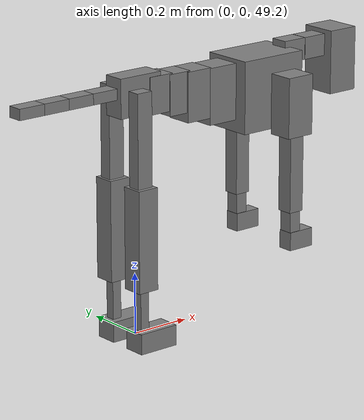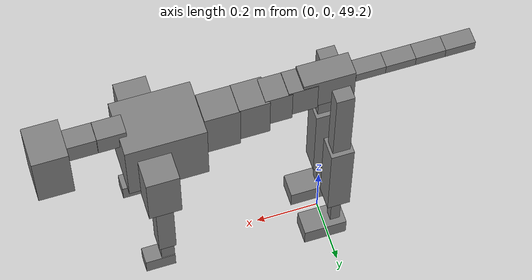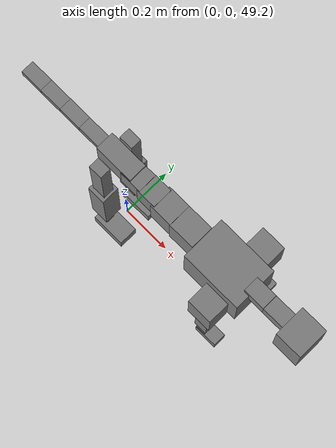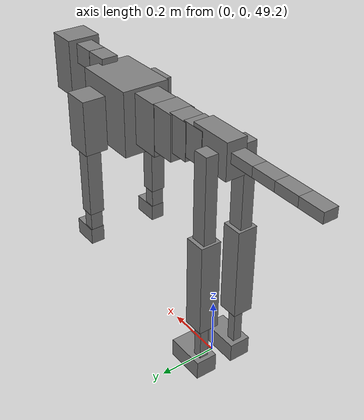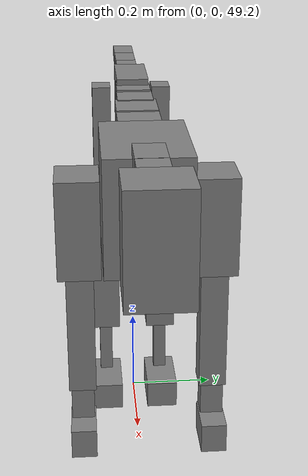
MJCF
<mujoco model="dog">

    <default>
        <joint armature="0.02" stiffness="1" damping="0.2" limited="true"/>
        <geom condim="3" friction="1 0.05 0.05" margin="0.01"/>
        <motor ctrllimited="true" ctrlrange="-1.0 1.0" forcelimited="true" gear="50"/>
    </default>

    <compiler inertiafromgeom="true" angle="radian"/>

    <option timestep="0.016" iterations="50" tolerance="1e-10" solver="Newton" jacobian="dense" cone="pyramidal"/>

    <size nconmax="20000" njmax="60000" nstack="5000000"/>
    <visual>
        <map force="0.1" zfar="30"/>
        <rgba haze="0.15 0.25 0.35 1"/>
        <quality shadowsize="2048"/>
        <global offwidth="800" offheight="800"/>
    </visual>

    <asset>
        <texture type="skybox" builtin="gradient" rgb1="0.3 0.5 0.7" rgb2="0 0 0" width="512" height="512"/>
        <texture name="texplane" type="2d" builtin="checker" rgb1=".2 .3 .4" rgb2=".1 0.15 0.2" width="512" height="512"
                 mark="cross" markrgb=".8 .8 .8"/>
        <texture name="texgeom" type="cube" builtin="flat" mark="cross" width="127" height="1278" rgb1="0.8 0.6 0.4"
                 rgb2="0.8 0.6 0.4" markrgb="1 1 1" random="0.01"/>

        <material name="matplane" reflectance="0.3" texture="texplane" texrepeat="1 1" texuniform="true"/>
        <material name="matgeom" texture="texgeom" texuniform="true" rgba="0.8 0.6 .4 1"/>
    </asset>

    <worldbody>
        <geom name="floor" pos="0 0 0" size="0 0 .25" type="plane" material="matplane" condim="3"/>

        <light directional="false" diffuse=".2 .2 .2" specular="0 0 0" pos="0 0 5" dir="0 0 -1" castshadow="false"/>
        <light mode="targetbodycom" target="torso" directional="false" diffuse=".8 .8 .8" specular="0.3 0.3 0.3"
               pos="0 0 4.0" dir="0 0 -1"/>

        <body name="root" pos="0 0 50">
            <freejoint name="root_1"/>
            <geom type="box" pos="0 0 -0.02" size="0.0774  0.0358  0.063" density="2030"/>

            <body name="spine1" pos="0.054 0 0">
                <joint name="spine1_y" axis="0 1 0" range="0 0.7" limited="true"/>
                <geom type="box" pos="0.02375 0 -0.03" size="0.04375  0.0375  0.05985" density="2030"/>

                <body name="spine2" pos="0.0612 0 0">
                    <joint name="spine2_y" axis="0 1 0" range="-0.15 0.15" limited="true"/>
                    <geom type="box" pos="0.03555  0  -0.04" size="0.04055  0.039  0.06615" density="2030"/>

                    <body name="spine3" pos="0.0730 0 0">
                        <joint name="spine3_y" axis="0 1 0" range="-0.15 0.15" limited="true"/>
                        <geom type="box" pos="0.03555  0  -0.057" size="0.04555  0.0445  0.081" density="2030"/>

                        <body name="spine4" pos="0.0780 0 0">
                            <joint name="spine4_y" axis="0 1 0" range="-0.15 0.15" limited="true"/>
                            <geom type="box" pos="0.05265  0  -0.07" size="0.05265  0.045  0.09135" density="2030"/>

                            <body name="torso" pos="0.1082 0 0">
                                <joint name="torso_y" axis="0 1 0" range="-0.15 0.15" limited="true"/>
                                <geom type="box" pos="0.11925  0  -0.085" size="0.11925  0.085  0.11745"
                                      density="2030"/>

                                <body name="neck1" pos="0.2160  0   0.0180">
                                    <joint name="neck1_y" axis="0 1 0" range="-1.2  -1" limited="true"/>
                                    <geom type="box" pos="0.0423  0  0" size="0.0423  0.03  0.036" density="2325"/>

                                    <body name="neck2" pos="0.0853  0  0">
                                        <joint name="neck2_y" axis="0 1 0" range="0.1  0" limited="true"/>
                                        <geom type="box" pos="0.0423  0  0" size="0.0423  0.03  0.036" density="2325"/>

                                        <body name="head" pos="0.0853  0  0">
                                            <joint name="head_y" axis="0 1 0" range="-0.3  -0.2" limited="true"/>
                                            <geom type="box" pos="0.0531  0  -0.055" size="0.0531  0.06  0.1044"
                                                  density="4030"/>

                                        </body>
                                    </body>
                                </body>

                                <body name="front_shoulder" pos="0.156  0   -0.0480">
                                    <joint name="front_shoulder_y" axis="0 1 0" range="-1 1.5" limited="true"/>
                                    <geom type="box" pos="0 0.13 -0.0716" size="0.0489  0.0418  0.0982" density="1158"/>
                                    <geom type="box" pos="0 -0.13 -0.0716" size="0.0489  0.0418  0.0982"
                                          density="1158"/>

                                    <body name="front_elbow" pos="0  0  -0.1432">
                                        <joint name="front_elbow_y" axis="0 1 0" range="-2 0" limited="true"/>
                                        <geom type="box" pos="0 0.13 -0.1394" size="0.0264  0.0270  0.1394"
                                              density="1081"/>
                                        <geom type="box" pos="0 -0.13 -0.1394" size="0.0264  0.0270  0.1394"
                                              density="1081"/>

                                        <body name="front_wrist" pos="0  0  -0.2789">
                                            <joint name="front_wrist_y" axis="0 1 0" range="-0.2 0" limited="true"/>
                                            <geom type="box" pos="0 0.13 -0.0410" size="0.0204  0.0226  0.0542"
                                                  density="1664"/>
                                            <geom type="box" pos="0 -0.13 -0.0410" size="0.0204  0.0226  0.0542"
                                                  density="1664"/>

                                            <body name="front_finger_end" pos="0  0  -0.0821">
                                                <joint name="front_finger_y" axis="0 1 0" range="-0.4 1"
                                                       limited="true"/>
                                                <geom type="box" pos="0.0252  0.13  -0.0150"
                                                      size="0.0461  0.0252  0.0300" density="1515"/>
                                                <geom type="box" pos="0.0252  -0.13  -0.0150"
                                                      size="0.0461  0.0252  0.0300" density="1515"/>

                                            </body>

                                        </body>
                                    </body>
                                </body>

                            </body>
                        </body>
                    </body>
                </body>
            </body>

            <body name="back_hip" pos="-0.03 0 -0.018">
                <joint name="back_hip_y" axis="0 1 0" range="-1.5 0.3" limited="true"/>
                <geom type="box" pos="0 0.07 -0.1470" size="0.0273  0.0214  0.1698" density="1154"/>
                <geom type="box" pos="0 -0.07 -0.1470" size="0.0273  0.0214  0.1698" density="1154"/>

                <body name="back_knee" pos="0  0  -0.2941">
                    <joint name="back_knee_y" axis="0 1 0" range="0 2.8" limited="true"/>
                    <geom type="box" pos="0 0.07 -0.1491" size="0.0360  0.0355  0.1646" density="1227"/>
                    <geom type="box" pos="0 -0.07 -0.1491" size="0.0360  0.0355  0.1646" density="1227"/>

                    <body name="back_ankle" pos="0  0  -0.2982">
                        <joint name="back_ankle_y" axis="0 1 0" range="-2.2 0" limited="true"/>
                        <geom type="box" pos="0 0.07 -0.0813" size="0.0156  0.0156  0.0926" density="1284"/>
                        <geom type="box" pos="0 -0.07 -0.0813" size="0.0156  0.0156  0.0926" density="1284"/>

                        <body name="back_toe_end" pos="0  0  -0.1627">
                            <joint name="back_toe_y" axis="0 1 0" range="-0.4 1" limited="true"/>
                            <geom type="box" pos="0.0376  0.07  -0.0183" size="0.0689  0.0376  0.0333" density="1515"/>
                            <geom type="box" pos="0.0376  -0.07  -0.0183" size="0.0689  0.0376  0.0333" density="1515"/>

                        </body>
                    </body>
                </body>
            </body>

            <body name="tail1" pos="-0.074 0 -0.006">
                <joint name="tail1_y" axis="0 1 0" range="-0.2 0.2" limited="true"/>
                <geom type="box" pos="-0.0536  0  0" size="0.045  0.025  0.0175" density="1587"/>

                <body name="tail2" pos="-0.09 0 0">
                    <joint name="tail2_y" axis="0 1 0" range="-0.2 0.2" limited="true"/>
                    <geom type="box" pos="-0.0536  0  0" size="0.045  0.025  0.0175" density="1587"/>

                    <body name="tail3" pos="-0.09 0 0">
                        <joint name="tail3_y" axis="0 1 0" range="-0.2 0.2" limited="true"/>
                        <geom type="box" pos="-0.0536  0  0" size="0.045  0.025  0.0175" density="1587"/>

                        <body name="tail4" pos="-0.09 0 0">
                            <joint name="tail4_y" axis="0 1 0" range="-0.2 0.2" limited="true"/>
                            <geom type="box" pos="-0.0536  0  0" size="0.045  0.025  0.0175" density="1587"/>

                        </body>
                    </body>
                </body>
            </body>
        </body>
    </worldbody>

    <actuator>
        <motor joint="spine1_y" forcerange="-150 150     "/>
        <motor joint="spine2_y" forcerange="-150 150     "/>
        <motor joint="spine3_y" forcerange="-150 150     "/>
        <motor joint="spine4_y" forcerange="-150 150     "/>
        <motor joint="torso_y" forcerange="-150 150     "/>
        <motor joint="neck1_y" forcerange="-100 100       "/>
        <motor joint="neck2_y" forcerange="-100 100       "/>
        <motor joint="head_y" forcerange="-150 150       "/>
        <motor joint="front_shoulder_y" forcerange="-197.37 181.14"/>
        <motor joint="front_elbow_y" forcerange="-173.13 123.14"/>
        <motor joint="front_wrist_y" forcerange="-93.27 87.89"/>
        <motor joint="front_finger_y" forcerange="-58.19 36.00"/>
        <motor joint="back_hip_y" forcerange="-221.18 264.51"/>
        <motor joint="back_knee_y" forcerange="-320.30 395.85"/>
        <motor joint="back_angle_y" forcerange="-93.36 56.24"/>
        <motor joint="back_toe_y" forcerange="-96.77 124.01"/>
        <motor joint="tail1_y" forcerange="-50 50     "/>
        <motor joint="tail2_y" forcerange="-50 50     "/>
        <motor joint="tail3_y" forcerange="-50 50     "/>
        <motor joint="tail4_y" forcerange="-50 50     "/>
    </actuator>
</mujoco>
